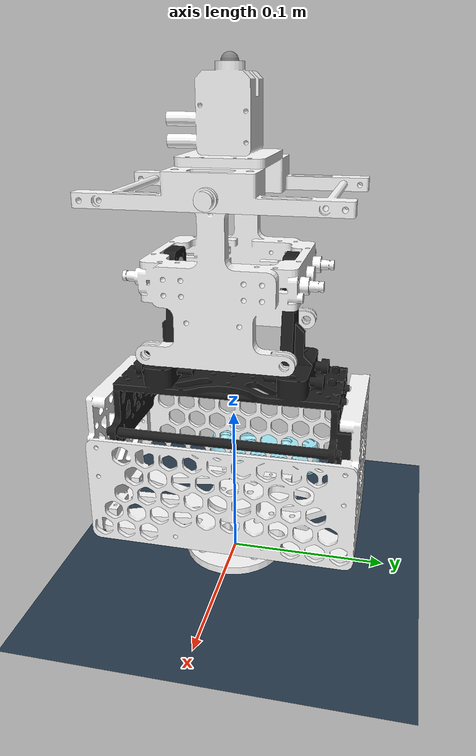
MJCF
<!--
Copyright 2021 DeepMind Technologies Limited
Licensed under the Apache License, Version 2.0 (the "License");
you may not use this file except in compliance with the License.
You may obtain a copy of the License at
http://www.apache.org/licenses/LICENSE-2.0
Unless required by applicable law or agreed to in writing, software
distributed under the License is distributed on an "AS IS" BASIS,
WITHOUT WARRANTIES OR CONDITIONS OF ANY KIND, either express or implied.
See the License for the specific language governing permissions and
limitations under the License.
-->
<mujoco>
  <include file="asm_v2.xml"/>

  <statistic meansize=".05"/>

  <visual>
    <rgba haze="0.15 0.25 0.35 1"/>
    <quality shadowsize="4096"/>
    <map stiffness="700" shadowscale="0.5" fogstart="1" fogend="15" zfar="40"/>
  </visual>

  <asset>
    <texture type="skybox" builtin="gradient" rgb1="0.3 0.5 0.7" rgb2="0 0 0" width="512" height="512"/>
    <texture name="texplane" type="2d" builtin="checker" rgb1=".2 .3 .4" rgb2=".1 0.15 0.2"
      width="512" height="512" mark="cross" markrgb=".8 .8 .8"/>

    <material name="matplane" reflectance="0.3" texture="texplane" texrepeat="10 10" texuniform="true"/>
  </asset>

  <worldbody>
    <light diffuse=".4 .4 .4" specular="0.1 0.1 0.1" pos="0 0 2.0" dir="0 0 -1" castshadow="false"/>
    <light directional="true" diffuse=".8 .8 .8" specular="0.2 0.2 0.2" pos="0 0 4" dir="0 0 -1"/>

    <geom name="ground" type="plane" size="0 0 1" pos="0 0 0" quat="1 0 0 0" material="matplane" condim="1"/>
  </worldbody>
</mujoco>

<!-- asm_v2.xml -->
<mujoco model="asm_v2_description">
  <compiler angle="radian" meshdir="assets"/>
  <option timestep="0.002"/>

  <asset>
    <mesh name="base_link" file="base_link.STL"/>
    <mesh name="camera_link" file="camera_link.STL"/>
    <mesh name="force_sensor_link" file="force_sensor_link.STL"/>
    <mesh name="linear_fixed_link" file="linear_fixed_link.STL"/>
    <mesh name="asm_tool_link1" file="asm_tool_link1.STL"/>
    <mesh name="asm_tool_link2" file="asm_tool_link2.STL"/>
    <mesh name="asm_tool_link3" file="asm_tool_link3.STL"/>
    <mesh name="asm_waterproof_link" file="asm_waterproof_link.STL"/>

    <material name="base_white" rgba="1 1 1 1"/>
    <material name="camera_blue" rgba="0.654901960784314 0.933333333333333 1 1"/>
    <material name="sensor_body" rgba="0.792156862745098 0.819607843137255 0.933333333333333 1"/>
    <material name="tool_dark" rgba="0.109803921568627 0.109803921568627 0.109803921568627 1"/>
    <material name="soft_rubber" rgba="0.498039215686275 0.498039215686275 0.498039215686275 1"/>
  </asset>

  <worldbody>
    <!-- asm_base corresponds to the parent robot link that mounts the ASM tool. -->
    <body name="asm_base" pos="0 0 0" quat="0 0 0 1">
      <inertial pos="0.0436659010788282 0 0.00250000000000006" mass="0.086004368205565" diaginertia="2.92028954537743e-05 0.000136340313174352 0.000165184857093937"/>
      <geom type="mesh" mesh="base_link" material="base_white"/>

      <body name="camera_link" pos="0.1 -0.0011879 0.005">
        <inertial pos="2.41707232313815e-06 -0.00049444581332379 0.0117777122653947" mass="0.0363579991795017" diaginertia="2.11887628049285e-05 2.01033671667199e-06 2.24422074118421e-05"/>
        <camera name="c1" mode="fixed" fovy="100" euler="0 3.14 1.57" pos="0 0 0.05"/>
        <geom type="mesh" mesh="camera_link" material="camera_blue"/>
      </body>

      <camera name="c2" pos="0.5 0.5 0" mode="targetbody" target="camera_link" fovy="54.225"/>

      <body name="asm_force_sensor_link" pos="0 0 0.0145" euler="0 0 -3.1416">
        <inertial pos="-0.000349049071914536 -0.000349046591926434 6.96968716258906e-05" mass="0.0170701225195211" diaginertia="1.92592459282036e-06 1.92592528843229e-06 2.88618116550286e-06"/>
        <geom type="mesh" mesh="force_sensor_link" material="sensor_body"/>

        <site name="asm_force_sensor_site" pos="0 0 0" size="0.005"/>

        <body name="asm_linear_fixed_link" pos="0 0 0.0095" euler="0 0 3.1416">
          <inertial pos="0.000178295777954009 -0.00354351136861933 0.0287728544992723" mass="0.294786724180498" diaginertia="0.000501542417042301 0.000206429530918581 0.000490030919179466"/>
          <geom type="mesh" mesh="linear_fixed_link" material="base_white" conaffinity="0"/>

          <body name="asm_tool_link1" pos="0 0 0.10171">
            <inertial pos="0.000503162951736984 -0.00214891278340015 -0.00246586232436954" mass="0.190414490710655" diaginertia="0.000123985544804799 5.40566762518669e-05 0.00012962451821251"/>
            <joint name="asm_tool_joint1" type="slide" axis="0 0 1" range="-0.05 0.005" damping="0.1" frictionloss="0.1"/>
            <geom type="mesh" mesh="asm_tool_link1" material="tool_dark" conaffinity="0"/>

            <body name="asm_tool_link2" pos="0 0 0.068" euler="0 -0.0 0">
              <inertial pos="-2.10346355471475e-05 -2.70135669043457e-05 0.00514183487267464" mass="0.208516612105549" diaginertia="7.40334891045725e-05 7.61592001501933e-05 5.73979282215929e-05"/>
              <joint name="asm_tool_joint2" type="hinge" axis="0 -1 0" range="-0.15 0.15" damping="0.1" frictionloss="0.1"/>
              <geom type="mesh" mesh="asm_tool_link2" material="base_white" conaffinity="0"/>

              <body name="asm_tool_link3" pos="0.00034889 0 0.0495" euler="-0 0 0">
                <inertial pos="-0.000348898843608249 -0.000531783609665607 0.00884269931571253" mass="0.102220510436126" diaginertia="6.65596700213336e-05 1.91399123340046e-05 7.90975857774467e-05"/>
                <joint name="asm_tool_joint3" type="hinge" axis="1 0 0" range="-0.3 0.3" damping="0.1" frictionloss="0.1"/>
                <geom type="mesh" mesh="asm_tool_link3" material="base_white" conaffinity="0"/>
                <site name="asm_ee_site" pos="0 0 0.06585" size="0.005"/>

              </body>
            </body>
          </body>
        </body>
      </body>
    </body>
  </worldbody>

  <sensor>
    <force name="asm_force" site="asm_force_sensor_site"/>
    <torque name="asm_torque" site="asm_force_sensor_site"/>
    <jointpos name="link1_pos" joint="asm_tool_joint1"/>
    <jointpos name="link2_pos" joint="asm_tool_joint2"/>
    <jointpos name="link3_pos" joint="asm_tool_joint3"/>
  </sensor>

  <actuator>
    <position name="tool_joint1_pos" joint="asm_tool_joint1" kp="4000" kv="20.0" ctrlrange="-0.05 0.005"/>
    <position name="tool_joint2_pos" joint="asm_tool_joint2" kp="10" kv="0.1" ctrlrange="-0.15 0.15"/>
    <position name="tool_joint3_pos" joint="asm_tool_joint3" kp="10" kv="0.1" ctrlrange="-0.30 0.30"/>
  </actuator>
</mujoco>
